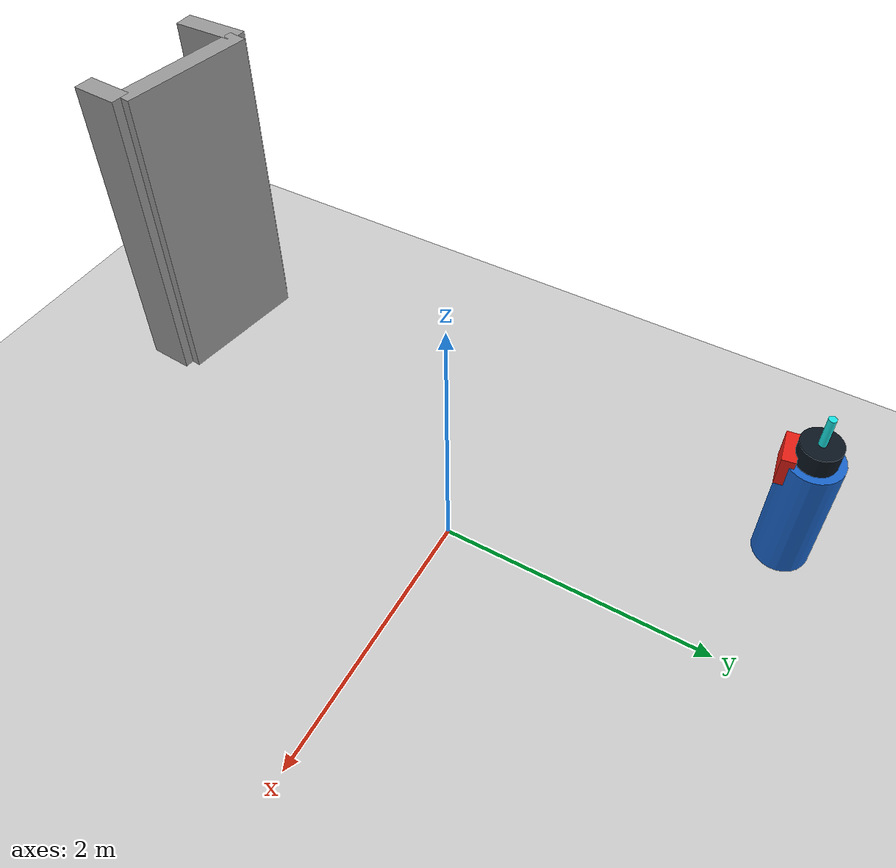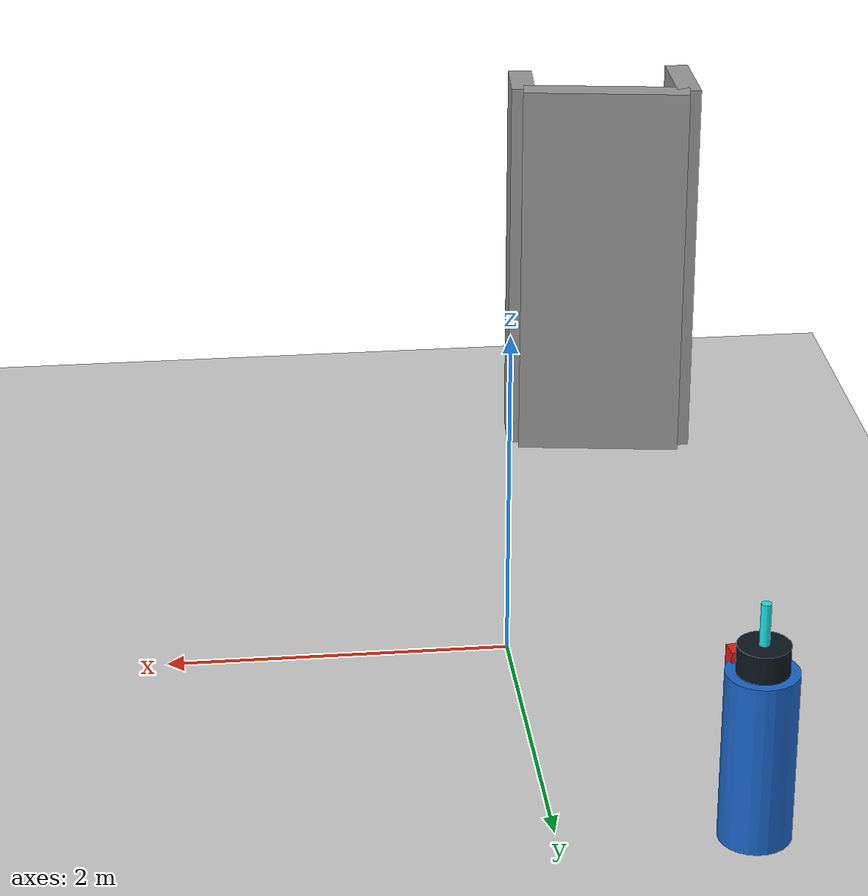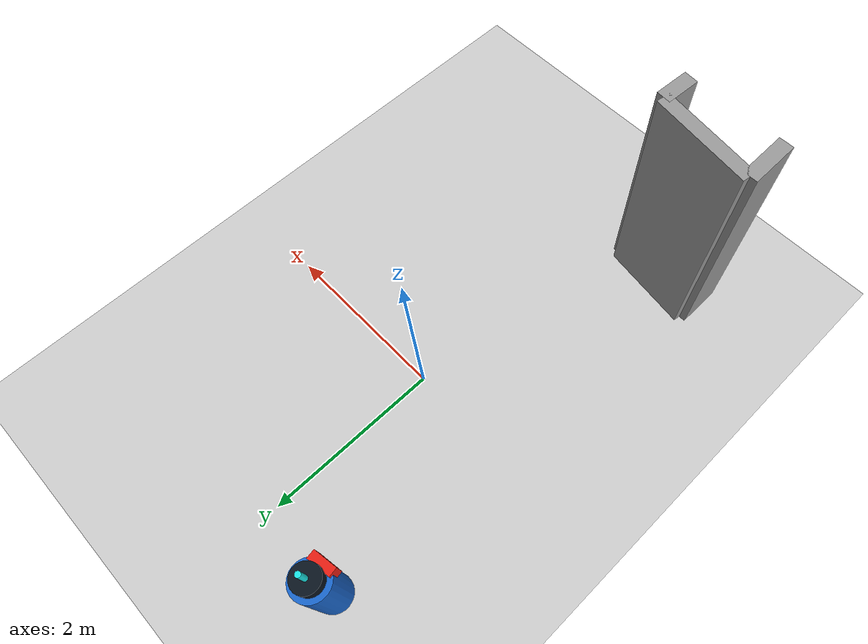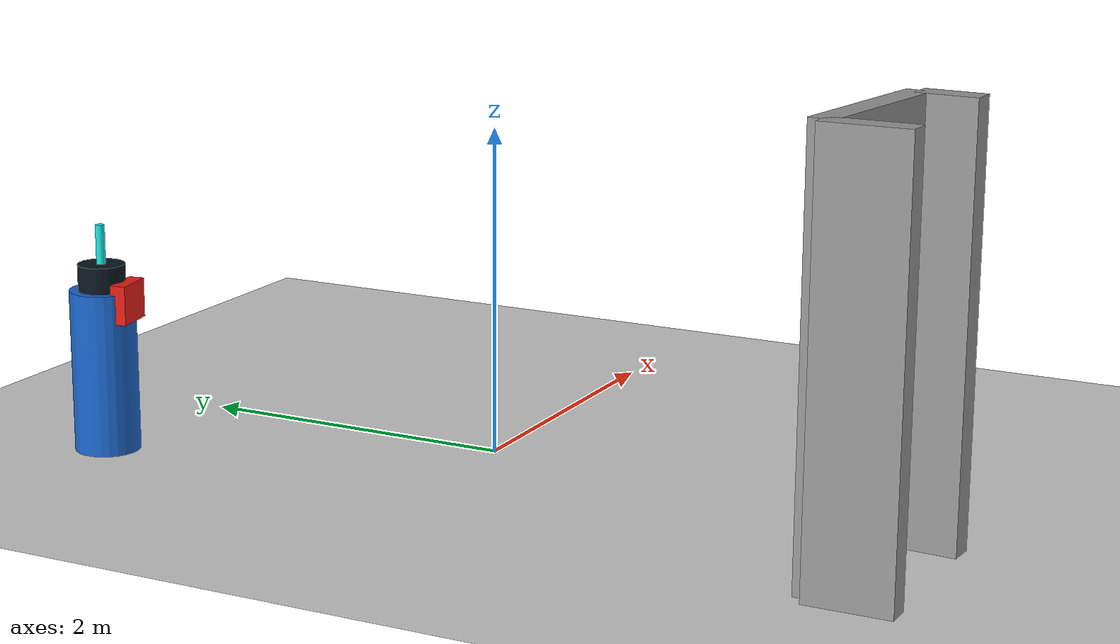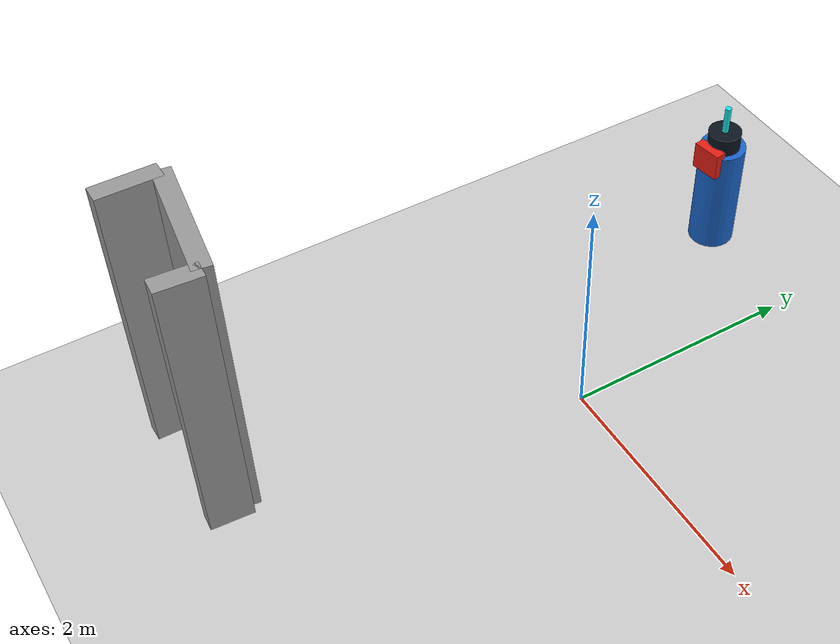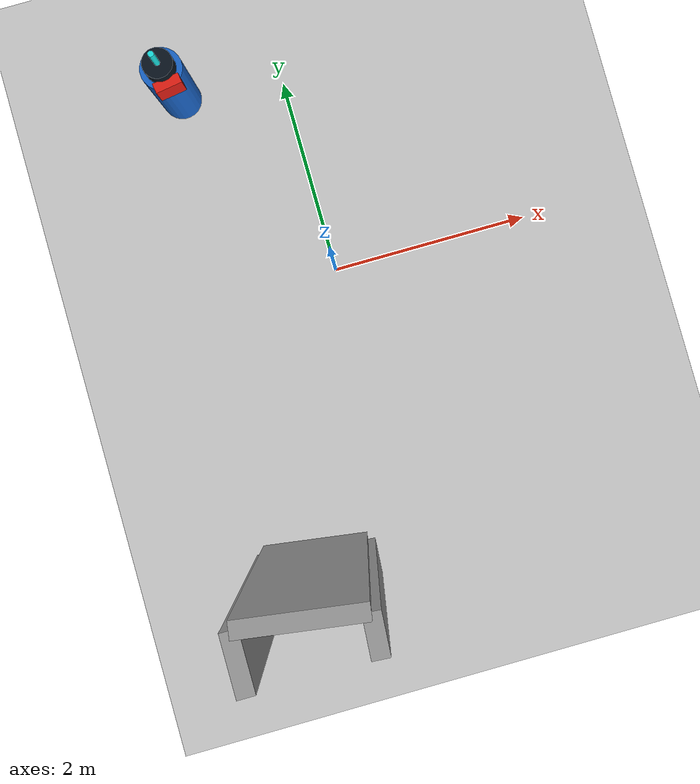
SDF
<sdf version="1.7">
 <world name="default">
  <plugin name="socnav_plugin" filename="libSocNavPlugin.so">
   <robot_name>robot</robot_name>
   <trajectory_file>/home/hunav_gz_classic_ws/SocNav3_trajectories/src3/000001114.json</trajectory_file>
   <human_slots>1</human_slots>
  </plugin>
  <light name="sun" type="directional">
   <pose>0 0 10 0 -0 0</pose>
   <diffuse>0.8 0.8 0.8 1</diffuse>
   <specular>0.2 0.2 0.2 1</specular>
   <attenuation>
    <range>1000</range>
    <constant>0.9</constant>
    <linear>0.01</linear>
    <quadratic>0.001</quadratic>
   </attenuation>
   <direction>-0.5 0.1 -0.9</direction>
   <spot><inner_angle>0</inner_angle><outer_angle>0</outer_angle><falloff>0</falloff></spot>
  </light>
  <model name="ground_plane">
   <static>1</static>
   <link name="link">
    <collision name="collision">
     <geometry><plane><normal>0 0 1</normal><size>100 100</size></plane></geometry>
     <surface><friction><ode><mu>100</mu><mu2>50</mu2></ode></friction></surface>
    </collision>
    <visual name="visual">
     <cast_shadows>0</cast_shadows>
     <geometry><plane><normal>0 0 1</normal><size>100 100</size></plane></geometry>
     <material>
      <script><uri>file://media/materials/scripts/kitchen.material</uri><name>Kitchen/CounterTop_H</name></script>
     </material>
    </visual>
   </link>
  </model>
  <gravity>0 0 -9.8</gravity>
  <magnetic_field>6e-06 2.3e-05 -4.2e-05</magnetic_field>
  <atmosphere type="adiabatic"/>
  <physics type="ode">
   <max_step_size>0.001</max_step_size>
   <real_time_factor>1</real_time_factor>
   <real_time_update_rate>1000</real_time_update_rate>
  </physics>
  <scene><ambient>0.4 0.4 0.4 1</ambient><background>0.7 0.7 0.7 1</background><shadows>1</shadows></scene>
  <audio><device>default</device></audio>
  <spherical_coordinates>
   <surface_model>EARTH_WGS84</surface_model>
   <latitude_deg>0</latitude_deg>
   <longitude_deg>0</longitude_deg>
   <elevation>0</elevation>
   <heading_deg>0</heading_deg>
  </spherical_coordinates>
  <model name="robot">
   <pose>-1.049580927685323 2.129070280965864 0.5 0 0 -1.4156337151387755</pose>
   <link name="link">
    <collision name="collision">
     <geometry><cylinder><radius>0.2</radius><length>1.0</length></cylinder></geometry>
    </collision>
    <visual name="visual">
     <geometry><cylinder><radius>0.2</radius><length>1.0</length></cylinder></geometry>
     <material><ambient>0.1 0.4 0.8 1</ambient><diffuse>0.1 0.4 0.8 1</diffuse></material>
    </visual>
    <visual name="robot_top">
     <pose>0 0 0.58 0 0 0</pose>
     <geometry><cylinder><radius>0.144</radius><length>0.16</length></cylinder></geometry>
     <material><ambient>0.04 0.08 0.12 1</ambient><diffuse>0.04 0.08 0.12 1</diffuse></material>
    </visual>
    <visual name="robot_front">
     <pose>0.168 0 0.44 0 0 0</pose>
     <geometry><box><size>0.096 0.256 0.24</size></box></geometry>
     <material><ambient>0.9 0.12 0.08 1</ambient><diffuse>0.9 0.12 0.08 1</diffuse></material>
    </visual>
    <visual name="robot_sensor">
     <pose>0 0 0.78 0 0 0</pose>
     <geometry><cylinder><radius>0.028000000000000004</radius><length>0.24</length></cylinder></geometry>
     <material><ambient>0.1 0.9 0.9 1</ambient><diffuse>0.1 0.9 0.9 1</diffuse></material>
    </visual>
   </link>
  </model>
  <model name="simple_world_test">
   <link name="Wall_0">
    <collision name="Wall_0_Collision">
     <geometry><box><size>0.5057269407525298 0.15 2.5</size></box></geometry>
     <pose>0 0 1.25 0 -0 0</pose>
    </collision>
    <visual name="Wall_0_Visual">
     <pose>0 0 1.25 0 -0 0</pose>
     <geometry><box><size>0.5057269407525298 0.15 2.5</size></box></geometry>
     <material>
      <script><uri>file://media/materials/scripts/gazebo.material</uri><name>Gazebo/Grey</name></script>
      <ambient>1 1 1 1</ambient>
     </material>
     <meta><layer>0</layer></meta>
    </visual>
    <pose>-1.4792282748033134 -2.8375368186325645 0 0 -0 1.5707963267948966</pose>
   </link>
   <link name="Wall_1">
    <collision name="Wall_1_Collision">
     <geometry><box><size>1.0606601717798216 0.15 2.5</size></box></geometry>
     <pose>0 0 1.25 0 -0 0</pose>
    </collision>
    <visual name="Wall_1_Visual">
     <pose>0 0 1.25 0 -0 0</pose>
     <geometry><box><size>1.0606601717798216 0.15 2.5</size></box></geometry>
     <material>
      <script><uri>file://media/materials/scripts/gazebo.material</uri><name>Gazebo/Grey</name></script>
      <ambient>1 1 1 1</ambient>
     </material>
     <meta><layer>0</layer></meta>
    </visual>
    <pose>-0.9542282748033133 -2.6596733482563 0 0 -0 -0.1418970546041642</pose>
   </link>
   <link name="Wall_2">
    <collision name="Wall_2_Collision">
     <geometry><box><size>0.356516568673645 0.15 2.5</size></box></geometry>
     <pose>0 0 1.25 0 -0 0</pose>
    </collision>
    <visual name="Wall_2_Visual">
     <pose>0 0 1.25 0 -0 0</pose>
     <geometry><box><size>0.356516568673645 0.15 2.5</size></box></geometry>
     <material>
      <script><uri>file://media/materials/scripts/gazebo.material</uri><name>Gazebo/Grey</name></script>
      <ambient>1 1 1 1</ambient>
     </material>
     <meta><layer>0</layer></meta>
    </visual>
    <pose>-0.4410858394950642 -2.9125368186325646 0 0 -0 -1.6373644905707208</pose>
   </link>
   <static>1</static>
  </model>
 </world>
</sdf>
